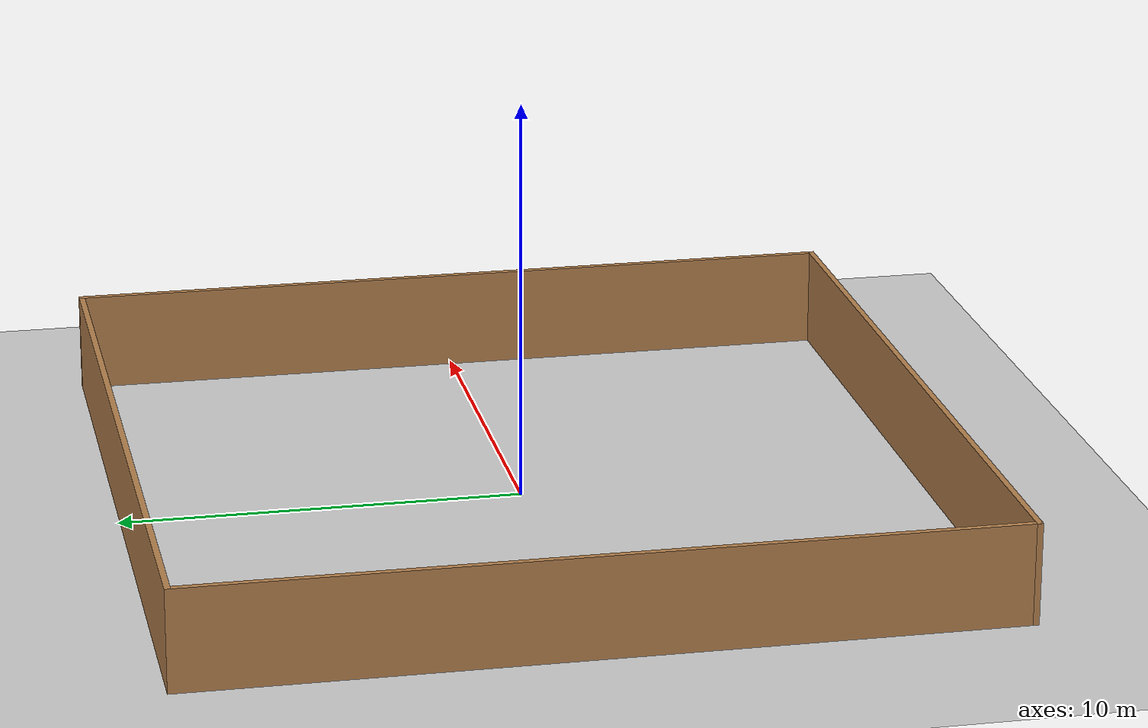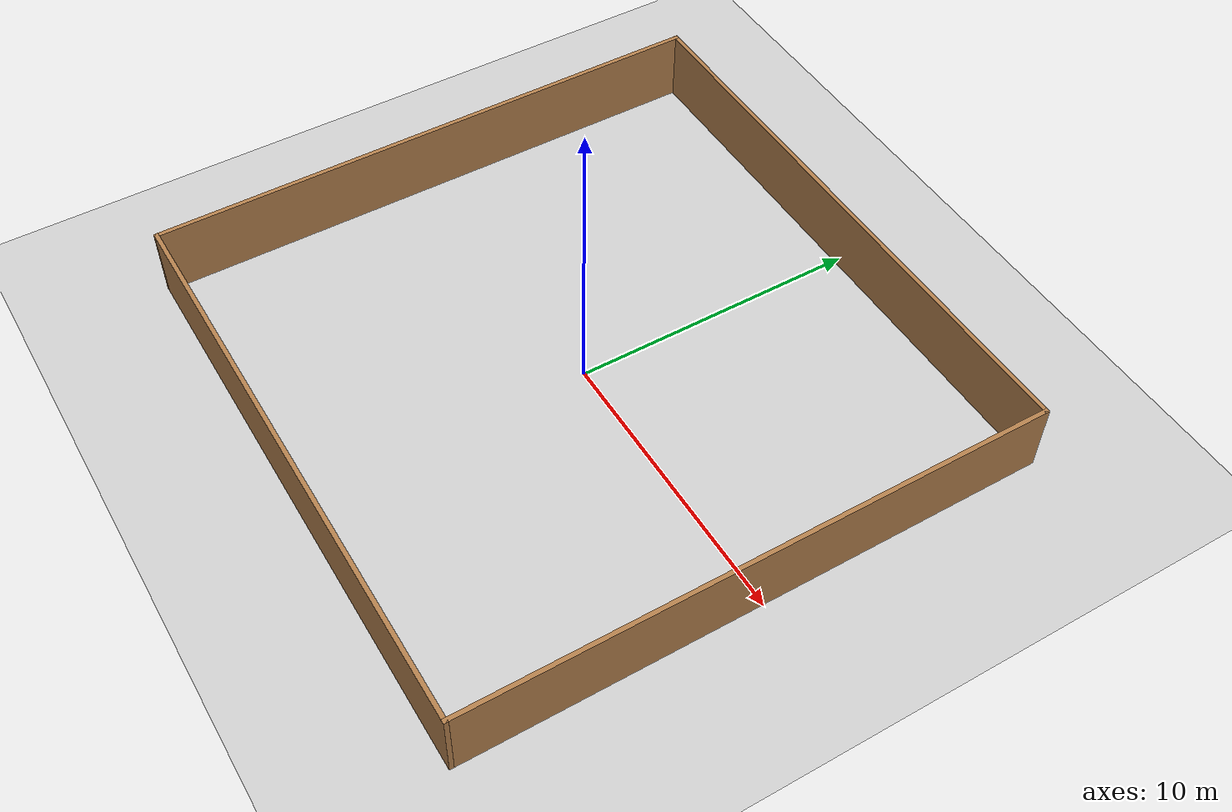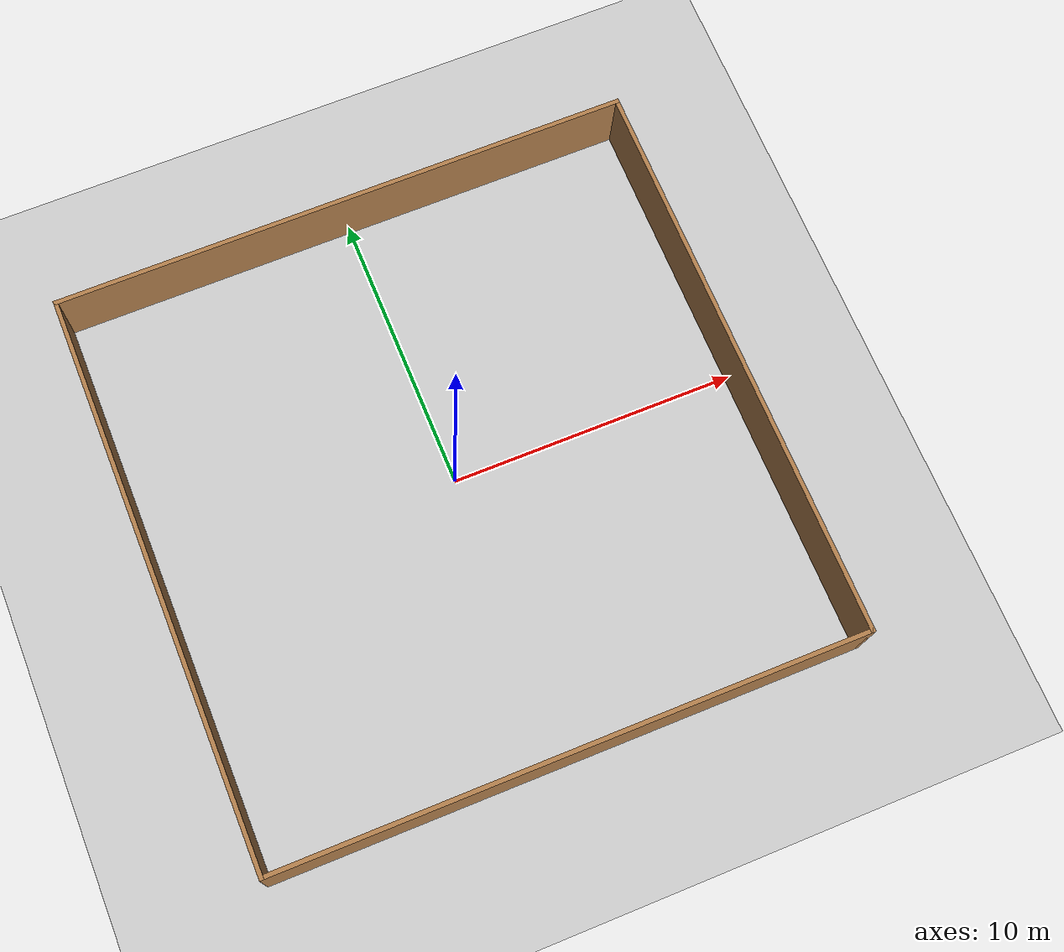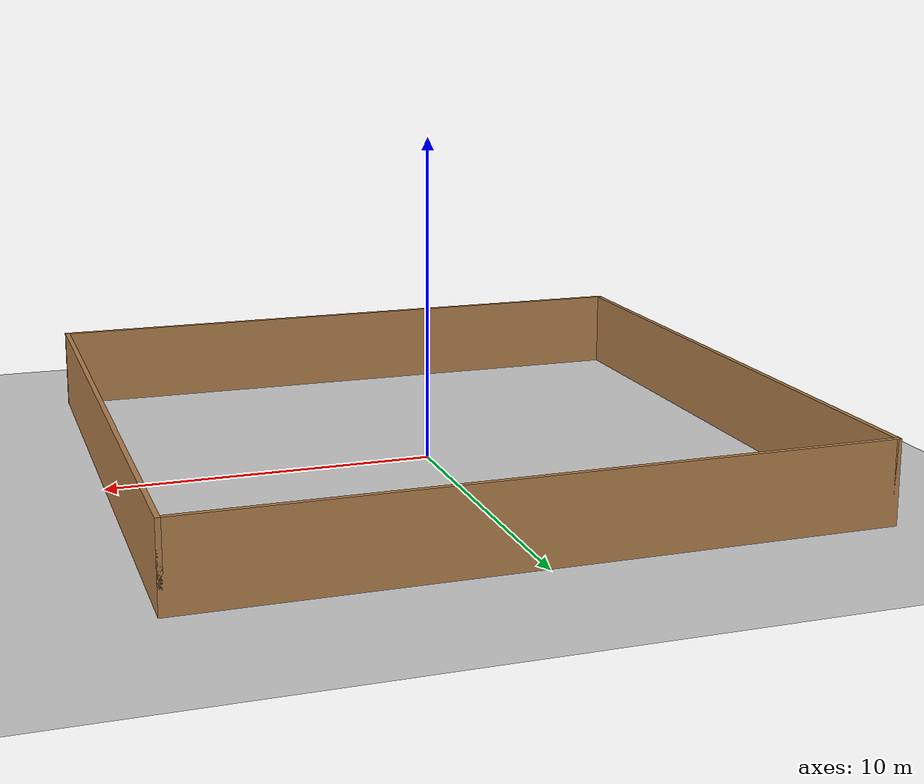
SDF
<sdf version="1.6">
 <world name="default">
  <light name="sun" type="directional">
   <pose>0 0 10 0 -0 0</pose>
   <diffuse>0.8 0.8 0.8 1</diffuse>
   <specular>0.2 0.2 0.2 1</specular>
   <attenuation>
    <range>1000</range>
    <constant>0.9</constant>
    <linear>0.01</linear>
    <quadratic>0.001</quadratic>
   </attenuation>
   <direction>-0.5 0.1 -0.9</direction>
  </light>
  <model name="ground_plane">
   <static>1</static>
   <link name="link">
    <collision name="collision">
     <geometry><plane><normal>0 0 1</normal><size>100 100</size></plane></geometry>
     <surface>
      <contact><collide_bitmask>65535</collide_bitmask></contact>
      <friction><ode><mu>100</mu><mu2>50</mu2></ode></friction>
     </surface>
    </collision>
    <visual name="visual">
     <cast_shadows>0</cast_shadows>
     <geometry><plane><normal>0 0 1</normal><size>100 100</size></plane></geometry>
     <material>
      <script><uri>file://media/materials/scripts/gazebo.material</uri><name>Gazebo/Grey</name></script>
     </material>
    </visual>
   </link>
  </model>
  <gravity>0 0 -9.8</gravity>
  <magnetic_field>6e-06 2.3e-05 -4.2e-05</magnetic_field>
  <atmosphere type="adiabatic"/>
  <physics name="default_physics" default="0" type="ode">
   <max_step_size>0.001</max_step_size>
   <real_time_factor>1</real_time_factor>
   <real_time_update_rate>1000</real_time_update_rate>
  </physics>
  <scene><ambient>0.4 0.4 0.4 1</ambient><background>0.7 0.7 0.7 1</background><shadows>1</shadows></scene>
  <audio><device>default</device></audio>
  <spherical_coordinates>
   <surface_model>EARTH_WGS84</surface_model>
   <latitude_deg>0</latitude_deg>
   <longitude_deg>0</longitude_deg>
   <elevation>0</elevation>
   <heading_deg>0</heading_deg>
  </spherical_coordinates>
  <model name="Square_Box">
   <pose>-0.148448 -0.053842 0 0 -0 0</pose>
   <link name="Wall_17">
    <collision name="Wall_17_Collision">
     <geometry><box><size>20.25 0.15 2.5</size></box></geometry>
     <pose>0 0 1.25 0 -0 0</pose>
    </collision>
    <visual name="Wall_17_Visual">
     <pose>0 0 1.25 0 -0 0</pose>
     <geometry><box><size>20.25 0.15 2.5</size></box></geometry>
     <material>
      <script><uri>file://media/materials/scripts/gazebo.material</uri><name>Gazebo/Wood</name></script>
      <ambient>1 1 1 1</ambient>
     </material>
     <meta><layer>0</layer></meta>
    </visual>
    <pose>0 -9.925 0 0 -0 0</pose>
   </link>
   <link name="Wall_23">
    <collision name="Wall_23_Collision">
     <geometry><box><size>20 0.15 2.5</size></box></geometry>
     <pose>0 0 1.25 0 -0 0</pose>
    </collision>
    <visual name="Wall_23_Visual">
     <pose>0 0 1.25 0 -0 0</pose>
     <geometry><box><size>20 0.15 2.5</size></box></geometry>
     <material>
      <script><uri>file://media/materials/scripts/gazebo.material</uri><name>Gazebo/Wood</name></script>
      <ambient>1 1 1 1</ambient>
     </material>
     <meta><layer>0</layer></meta>
    </visual>
    <pose>-10.05 -0 0 0 -0 1.5708</pose>
   </link>
   <link name="Wall_24">
    <collision name="Wall_24_Collision">
     <geometry><box><size>20.25 0.15 2.5</size></box></geometry>
     <pose>0 0 1.25 0 -0 0</pose>
    </collision>
    <visual name="Wall_24_Visual">
     <pose>0 0 1.25 0 -0 0</pose>
     <geometry><box><size>20.25 0.15 2.5</size></box></geometry>
     <material>
      <script><uri>file://media/materials/scripts/gazebo.material</uri><name>Gazebo/Wood</name></script>
      <ambient>1 1 1 1</ambient>
     </material>
     <meta><layer>0</layer></meta>
    </visual>
    <pose>0 9.925 0 0 -0 0</pose>
   </link>
   <link name="Wall_25">
    <collision name="Wall_25_Collision">
     <geometry><box><size>20 0.15 2.5</size></box></geometry>
     <pose>0 0 1.25 0 -0 0</pose>
    </collision>
    <visual name="Wall_25_Visual">
     <pose>0 0 1.25 0 -0 0</pose>
     <geometry><box><size>20 0.15 2.5</size></box></geometry>
     <material>
      <script><uri>file://media/materials/scripts/gazebo.material</uri><name>Gazebo/Wood</name></script>
      <ambient>1 1 1 1</ambient>
     </material>
     <meta><layer>0</layer></meta>
    </visual>
    <pose>10.05 -0 0 0 -0 -1.5708</pose>
   </link>
   <static>1</static>
  </model>
  <physics name="ode_70iters" type="ode">
   <real_time_update_rate>1500</real_time_update_rate>
   <ode><solver><type>quick</type><iters>70</iters></solver></ode>
  </physics>
 </world>
</sdf>
